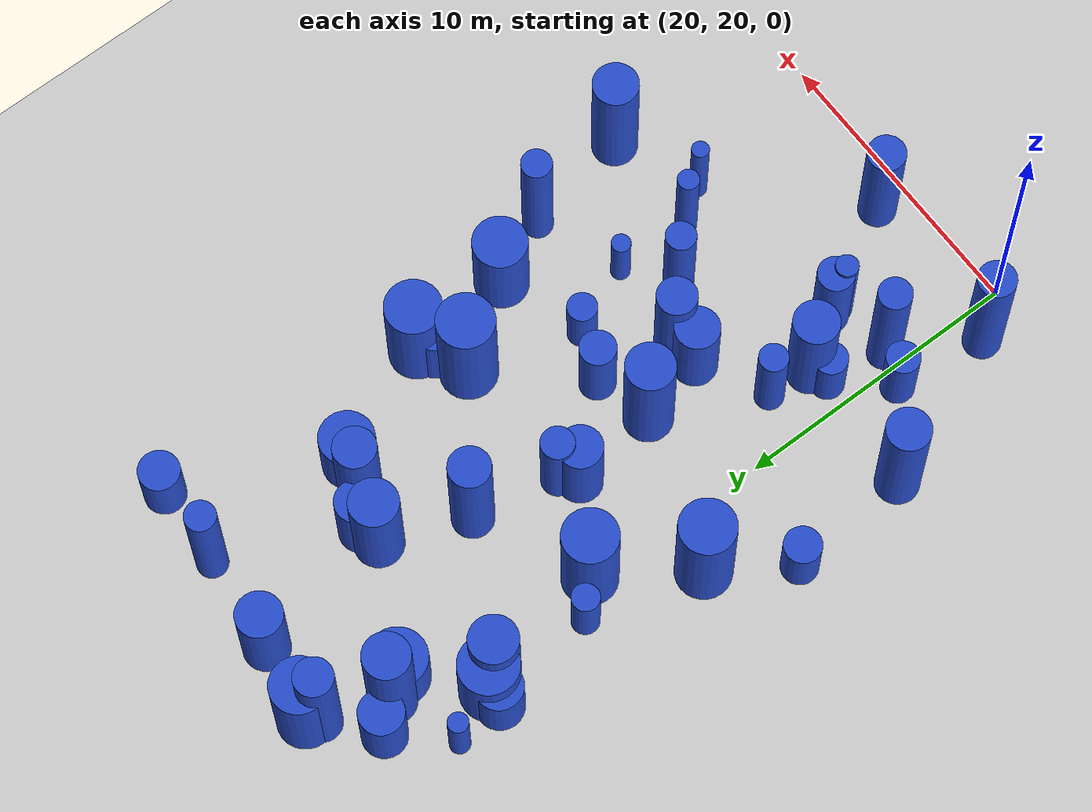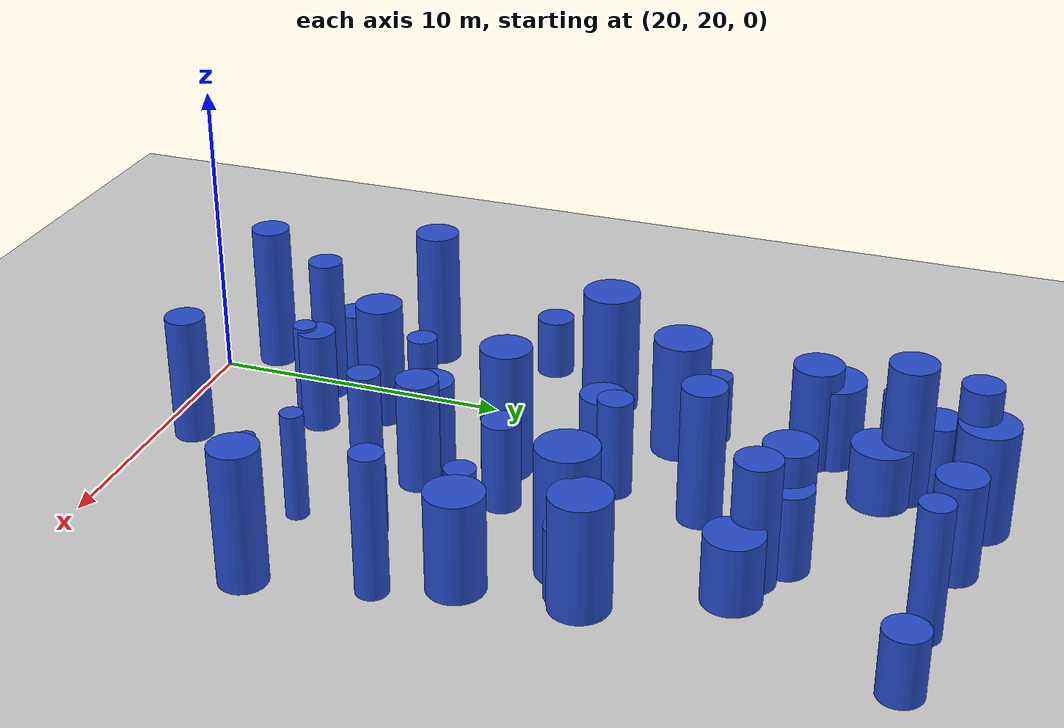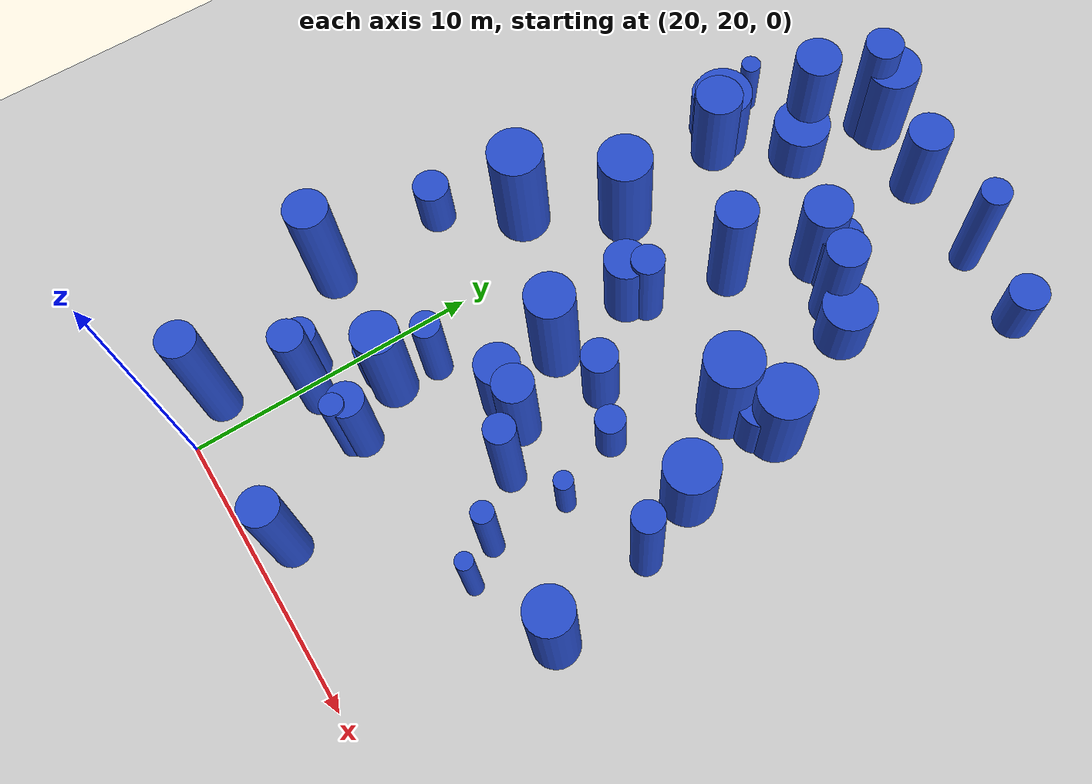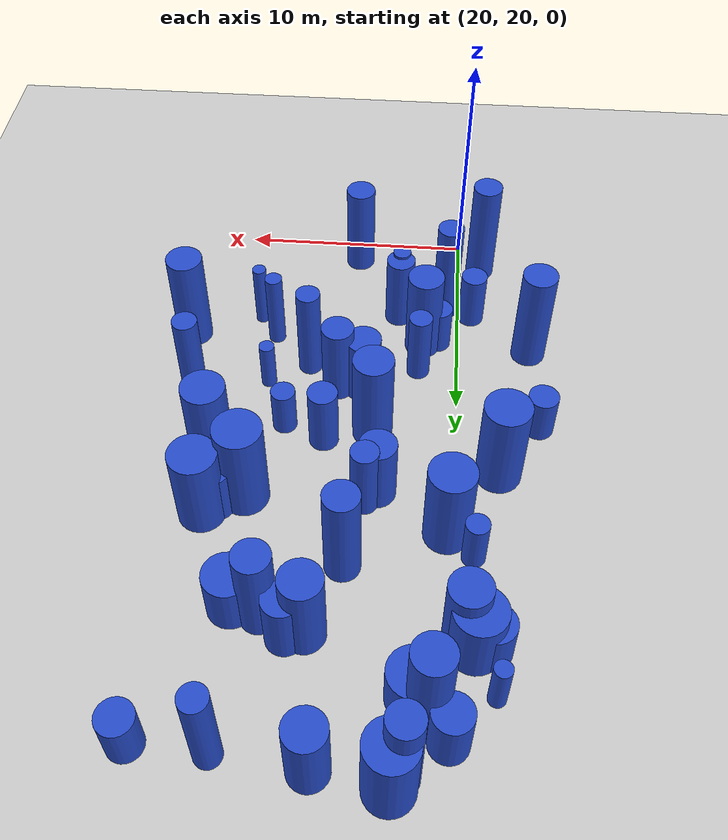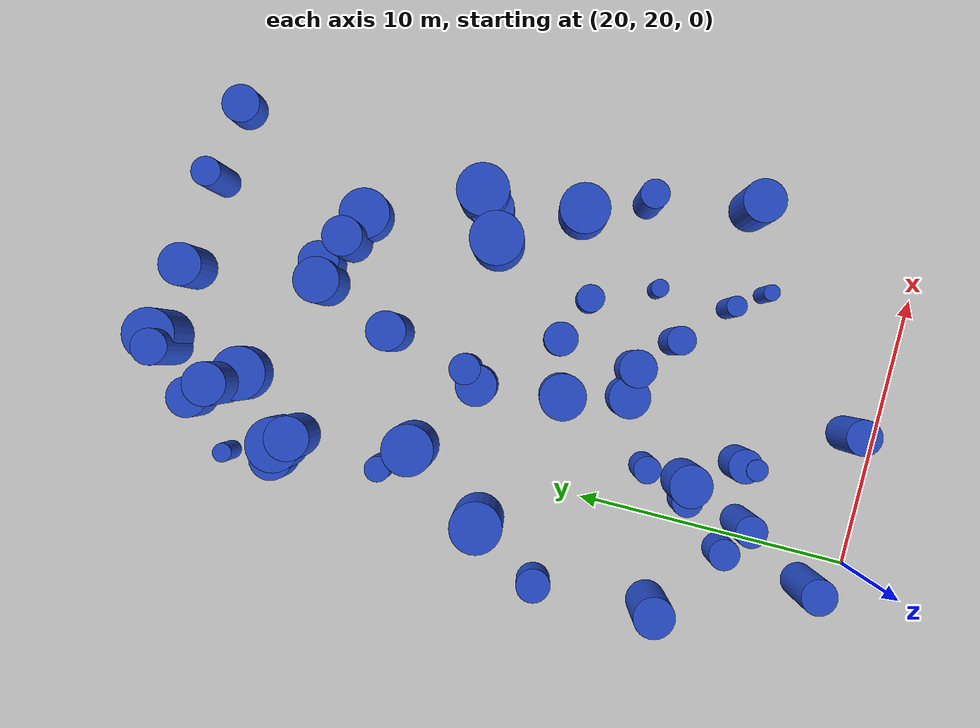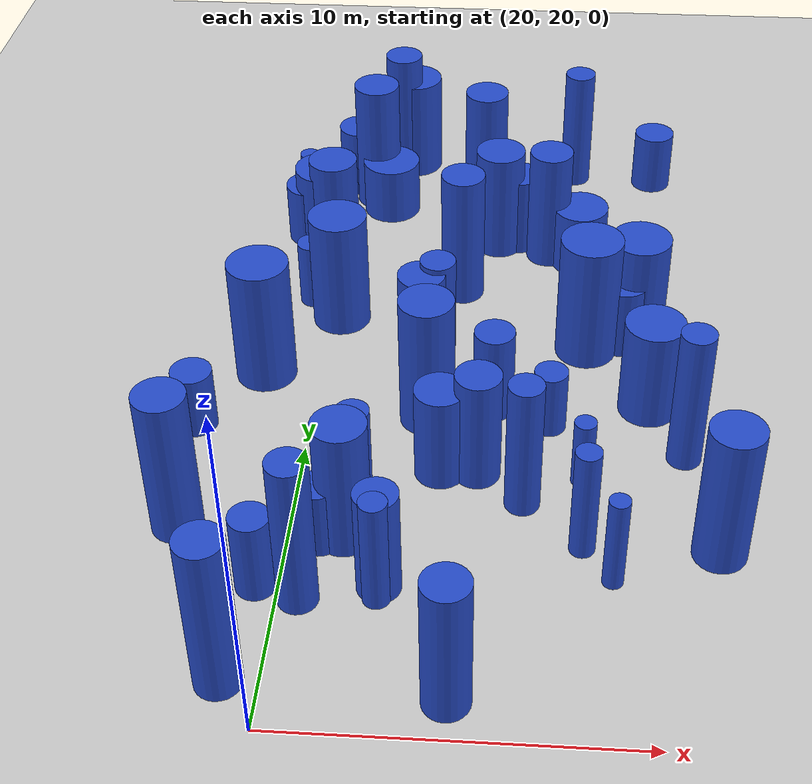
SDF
<sdf version="1.6">
 <world name="default">
  <model name="ground_plane">
   <static>1</static>
   <link name="link">
    <collision name="collision">
     <geometry><plane><normal>0 0 1</normal><size>100 100</size></plane></geometry>
     <surface><friction><ode><mu>100</mu><mu2>50</mu2></ode></friction></surface>
    </collision>
    <visual name="visual">
     <cast_shadows>0</cast_shadows>
     <geometry><plane><normal>0 0 1</normal><size>100 100</size></plane></geometry>
     <material>
      <script><uri>file://media/materials/scripts/gazebo.material</uri><name>Gazebo/Grey</name></script>
     </material>
    </visual>
   </link>
  </model>
  <model name="9">
   <static>0</static>
   <link name="link">
    <inertial>
     <mass>2</mass>
     <inertia><ixx>2.17214</ixx><ixy>0</ixy><ixz>0</ixz><iyy>2.17214</iyy><iyz>0</iyz><izz>0.825516</izz></inertia>
    </inertial>
    <collision name="collision">
     <geometry><cylinder><length>3.24904</length><radius>0.908579</radius></cylinder></geometry>
     <surface><contact><collide_without_contact>1</collide_without_contact></contact></surface>
    </collision>
    <visual name="visual">
     <geometry><cylinder><length>3.24904</length><radius>0.908579</radius></cylinder></geometry>
     <material>
      <script><uri>file://media/materials/scripts/gazebo.material</uri><name>Gazebo/Blue</name></script>
     </material>
    </visual>
    <gravity>0</gravity>
   </link>
   <pose>30.0928 32.4885 1.62452 0 -0 0</pose>
  </model>
  <model name="16">
   <static>0</static>
   <link name="link">
    <inertial>
     <mass>2</mass>
     <inertia><ixx>3.98692</ixx><ixy>0</ixy><ixz>0</ixz><iyy>3.98692</iyy><iyz>0</iyz><izz>0.541429</izz></inertia>
    </inertial>
    <collision name="collision">
     <geometry><cylinder><length>4.72199</length><radius>0.735818</radius></cylinder></geometry>
     <surface><contact><collide_without_contact>1</collide_without_contact></contact></surface>
    </collision>
    <visual name="visual">
     <geometry><cylinder><length>4.72199</length><radius>0.735818</radius></cylinder></geometry>
     <material>
      <script><uri>file://media/materials/scripts/gazebo.material</uri><name>Gazebo/Blue</name></script>
     </material>
    </visual>
    <gravity>0</gravity>
   </link>
   <pose>16.8892 26.7119 2.361 0 -0 0</pose>
  </model>
  <model name="21">
   <static>0</static>
   <link name="link">
    <inertial>
     <mass>2</mass>
     <inertia><ixx>3.15803</ixx><ixy>0</ixy><ixz>0</ixz><iyy>3.15803</iyy><iyz>0</iyz><izz>0.583815</izz></inertia>
    </inertial>
    <collision name="collision">
     <geometry><cylinder><length>4.14689</length><radius>0.764078</radius></cylinder></geometry>
     <surface><contact><collide_without_contact>1</collide_without_contact></contact></surface>
    </collision>
    <visual name="visual">
     <geometry><cylinder><length>4.14689</length><radius>0.764078</radius></cylinder></geometry>
     <material>
      <script><uri>file://media/materials/scripts/gazebo.material</uri><name>Gazebo/Blue</name></script>
     </material>
    </visual>
    <gravity>0</gravity>
   </link>
   <pose>21.5547 26.5343 2.07345 0 -0 0</pose>
  </model>
  <model name="22">
   <static>0</static>
   <link name="link">
    <inertial>
     <mass>2</mass>
     <inertia><ixx>3.25357</ixx><ixy>0</ixy><ixz>0</ixz><iyy>3.25357</iyy><iyz>0</iyz><izz>0.409144</izz></inertia>
    </inertial>
    <collision name="collision">
     <geometry><cylinder><length>4.27715</length><radius>0.639643</radius></cylinder></geometry>
     <surface><contact><collide_without_contact>1</collide_without_contact></contact></surface>
    </collision>
    <visual name="visual">
     <geometry><cylinder><length>4.27715</length><radius>0.639643</radius></cylinder></geometry>
     <material>
      <script><uri>file://media/materials/scripts/gazebo.material</uri><name>Gazebo/Blue</name></script>
     </material>
    </visual>
    <gravity>0</gravity>
   </link>
   <pose>24.6833 21.1514 2.13857 0 -0 0</pose>
  </model>
  <model name="32">
   <static>0</static>
   <link name="link">
    <inertial>
     <mass>2</mass>
     <inertia><ixx>3.68543</ixx><ixy>0</ixy><ixz>0</ixz><iyy>3.68543</iyy><iyz>0</iyz><izz>0.263178</izz></inertia>
    </inertial>
    <collision name="collision">
     <geometry><cylinder><length>4.61769</length><radius>0.513009</radius></cylinder></geometry>
     <surface><contact><collide_without_contact>1</collide_without_contact></contact></surface>
    </collision>
    <visual name="visual">
     <geometry><cylinder><length>4.61769</length><radius>0.513009</radius></cylinder></geometry>
     <material>
      <script><uri>file://media/materials/scripts/gazebo.material</uri><name>Gazebo/Blue</name></script>
     </material>
    </visual>
    <gravity>0</gravity>
   </link>
   <pose>31.0444 30.2874 2.30884 0 -0 0</pose>
  </model>
  <model name="34">
   <static>0</static>
   <link name="link">
    <inertial>
     <mass>2</mass>
     <inertia><ixx>0.87381</ixx><ixy>0</ixy><ixz>0</ixz><iyy>0.87381</iyy><iyz>0</iyz><izz>0.104626</izz></inertia>
    </inertial>
    <collision name="collision">
     <geometry><cylinder><length>2.22013</length><radius>0.323459</radius></cylinder></geometry>
     <surface><contact><collide_without_contact>1</collide_without_contact></contact></surface>
    </collision>
    <visual name="visual">
     <geometry><cylinder><length>2.22013</length><radius>0.323459</radius></cylinder></geometry>
     <material>
      <script><uri>file://media/materials/scripts/gazebo.material</uri><name>Gazebo/Blue</name></script>
     </material>
    </visual>
    <gravity>0</gravity>
   </link>
   <pose>28.0725 29.1738 1.11007 0 -0 0</pose>
  </model>
  <model name="36">
   <static>0</static>
   <link name="link">
    <inertial>
     <mass>2</mass>
     <inertia><ixx>1.95658</ixx><ixy>0</ixy><ixz>0</ixz><iyy>1.95658</iyy><iyz>0</iyz><izz>0.315427</izz></inertia>
    </inertial>
    <collision name="collision">
     <geometry><cylinder><length>3.2853</length><radius>0.561629</radius></cylinder></geometry>
     <surface><contact><collide_without_contact>1</collide_without_contact></contact></surface>
    </collision>
    <visual name="visual">
     <geometry><cylinder><length>3.2853</length><radius>0.561629</radius></cylinder></geometry>
     <material>
      <script><uri>file://media/materials/scripts/gazebo.material</uri><name>Gazebo/Blue</name></script>
     </material>
    </visual>
    <gravity>0</gravity>
   </link>
   <pose>23.5459 35.1984 1.64265 0 -0 0</pose>
  </model>
  <model name="41">
   <static>0</static>
   <link name="link">
    <inertial>
     <mass>2</mass>
     <inertia><ixx>1.76334</ixx><ixy>0</ixy><ixz>0</ixz><iyy>1.76334</iyy><iyz>0</iyz><izz>0.124496</izz></inertia>
    </inertial>
    <collision name="collision">
     <geometry><cylinder><length>3.19477</length><radius>0.352839</radius></cylinder></geometry>
     <surface><contact><collide_without_contact>1</collide_without_contact></contact></surface>
    </collision>
    <visual name="visual">
     <geometry><cylinder><length>3.19477</length><radius>0.352839</radius></cylinder></geometry>
     <material>
      <script><uri>file://media/materials/scripts/gazebo.material</uri><name>Gazebo/Blue</name></script>
     </material>
    </visual>
    <gravity>0</gravity>
   </link>
   <pose>23.6952 31.2859 1.59739 0 -0 0</pose>
  </model>
  <model name="47">
   <static>0</static>
   <link name="link">
    <inertial>
     <mass>2</mass>
     <inertia><ixx>3.56288</ixx><ixy>0</ixy><ixz>0</ixz><iyy>3.56288</iyy><iyz>0</iyz><izz>0.679619</izz></inertia>
    </inertial>
    <collision name="collision">
     <geometry><cylinder><length>4.39755</length><radius>0.82439</radius></cylinder></geometry>
     <surface><contact><collide_without_contact>1</collide_without_contact></contact></surface>
    </collision>
    <visual name="visual">
     <geometry><cylinder><length>4.39755</length><radius>0.82439</radius></cylinder></geometry>
     <material>
      <script><uri>file://media/materials/scripts/gazebo.material</uri><name>Gazebo/Blue</name></script>
     </material>
    </visual>
    <gravity>0</gravity>
   </link>
   <pose>23.4584 31.6278 2.19877 0 -0 0</pose>
  </model>
  <model name="49">
   <static>0</static>
   <link name="link">
    <inertial>
     <mass>2</mass>
     <inertia><ixx>1.29707</ixx><ixy>0</ixy><ixz>0</ixz><iyy>1.29707</iyy><iyz>0</iyz><izz>0.551894</izz></inertia>
    </inertial>
    <collision name="collision">
     <geometry><cylinder><length>2.47522</length><radius>0.742895</radius></cylinder></geometry>
     <surface><contact><collide_without_contact>1</collide_without_contact></contact></surface>
    </collision>
    <visual name="visual">
     <geometry><cylinder><length>2.47522</length><radius>0.742895</radius></cylinder></geometry>
     <material>
      <script><uri>file://media/materials/scripts/gazebo.material</uri><name>Gazebo/Blue</name></script>
     </material>
    </visual>
    <gravity>0</gravity>
   </link>
   <pose>20.0997 44.5938 1.23761 0 -0 0</pose>
  </model>
  <model name="53">
   <static>0</static>
   <link name="link">
    <inertial>
     <mass>2</mass>
     <inertia><ixx>2.77457</ixx><ixy>0</ixy><ixz>0</ixz><iyy>2.77457</iyy><iyz>0</iyz><izz>0.892205</izz></inertia>
    </inertial>
    <collision name="collision">
     <geometry><cylinder><length>3.73775</length><radius>0.944566</radius></cylinder></geometry>
     <surface><contact><collide_without_contact>1</collide_without_contact></contact></surface>
    </collision>
    <visual name="visual">
     <geometry><cylinder><length>3.73775</length><radius>0.944566</radius></cylinder></geometry>
     <material>
      <script><uri>file://media/materials/scripts/gazebo.material</uri><name>Gazebo/Blue</name></script>
     </material>
    </visual>
    <gravity>0</gravity>
   </link>
   <pose>29.7969 36.1188 1.86888 0 -0 0</pose>
  </model>
  <model name="58">
   <static>0</static>
   <link name="link">
    <inertial>
     <mass>2</mass>
     <inertia><ixx>4.36397</ixx><ixy>0</ixy><ixz>0</ixz><iyy>4.36397</iyy><iyz>0</iyz><izz>0.40593</izz></inertia>
    </inertial>
    <collision name="collision">
     <geometry><cylinder><length>4.9966</length><radius>0.637126</radius></cylinder></geometry>
     <surface><contact><collide_without_contact>1</collide_without_contact></contact></surface>
    </collision>
    <visual name="visual">
     <geometry><cylinder><length>4.9966</length><radius>0.637126</radius></cylinder></geometry>
     <material>
      <script><uri>file://media/materials/scripts/gazebo.material</uri><name>Gazebo/Blue</name></script>
     </material>
    </visual>
    <gravity>0</gravity>
   </link>
   <pose>19.0079 21.4355 2.4983 0 -0 0</pose>
  </model>
  <model name="66">
   <static>0</static>
   <link name="link">
    <inertial>
     <mass>2</mass>
     <inertia>
      <ixx>0.890381</ixx>
      <ixy>0</ixy>
      <ixz>0</ixz>
      <iyy>0.890381</iyy>
      <iyz>0</iyz>
      <izz>0.38752</izz>
     </inertia>
    </inertial>
    <collision name="collision">
     <geometry><cylinder><length>2.04444</length><radius>0.622511</radius></cylinder></geometry>
     <surface><contact><collide_without_contact>1</collide_without_contact></contact></surface>
    </collision>
    <visual name="visual">
     <geometry><cylinder><length>2.04444</length><radius>0.622511</radius></cylinder></geometry>
     <material>
      <script><uri>file://media/materials/scripts/gazebo.material</uri><name>Gazebo/Blue</name></script>
     </material>
    </visual>
    <gravity>0</gravity>
   </link>
   <pose>16.5905 30.9335 1.02222 0 -0 0</pose>
  </model>
  <model name="70">
   <static>0</static>
   <link name="link">
    <inertial>
     <mass>2</mass>
     <inertia>
      <ixx>0.970635</ixx>
      <ixy>0</ixy>
      <ixz>0</ixz>
      <iyy>0.970635</iyy>
      <iyz>0</iyz>
      <izz>0.218548</izz>
     </inertia>
    </inertial>
    <collision name="collision">
     <geometry><cylinder><length>2.27336</length><radius>0.467491</radius></cylinder></geometry>
     <surface><contact><collide_without_contact>1</collide_without_contact></contact></surface>
    </collision>
    <visual name="visual">
     <geometry><cylinder><length>2.27336</length><radius>0.467491</radius></cylinder></geometry>
     <material>
      <script><uri>file://media/materials/scripts/gazebo.material</uri><name>Gazebo/Blue</name></script>
     </material>
    </visual>
    <gravity>0</gravity>
   </link>
   <pose>19.2823 37.3799 1.13668 0 -0 0</pose>
  </model>
  <model name="71">
   <static>0</static>
   <link name="link">
    <inertial>
     <mass>2</mass>
     <inertia><ixx>1.25615</ixx><ixy>0</ixy><ixz>0</ixz><iyy>1.25615</iyy><iyz>0</iyz><izz>0.836986</izz></inertia>
    </inertial>
    <collision name="collision">
     <geometry><cylinder><length>2.24185</length><radius>0.914869</radius></cylinder></geometry>
     <surface><contact><collide_without_contact>1</collide_without_contact></contact></surface>
    </collision>
    <visual name="visual">
     <geometry><cylinder><length>2.24185</length><radius>0.914869</radius></cylinder></geometry>
     <material>
      <script><uri>file://media/materials/scripts/gazebo.material</uri><name>Gazebo/Blue</name></script>
     </material>
    </visual>
    <gravity>0</gravity>
   </link>
   <pose>28.0409 40.0976 1.12093 0 -0 0</pose>
  </model>
  <model name="76">
   <static>0</static>
   <link name="link">
    <inertial>
     <mass>2</mass>
     <inertia><ixx>4.14211</ixx><ixy>0</ixy><ixz>0</ixz><iyy>4.14211</iyy><iyz>0</iyz><izz>0.313951</izz></inertia>
    </inertial>
    <collision name="collision">
     <geometry><cylinder><length>4.88987</length><radius>0.560314</radius></cylinder></geometry>
     <surface><contact><collide_without_contact>1</collide_without_contact></contact></surface>
    </collision>
    <visual name="visual">
     <geometry><cylinder><length>4.88987</length><radius>0.560314</radius></cylinder></geometry>
     <material>
      <script><uri>file://media/materials/scripts/gazebo.material</uri><name>Gazebo/Blue</name></script>
     </material>
    </visual>
    <gravity>0</gravity>
   </link>
   <pose>20.5966 24.224 2.44494 0 -0 0</pose>
  </model>
  <model name="77">
   <static>0</static>
   <link name="link">
    <inertial>
     <mass>2</mass>
     <inertia><ixx>1.8782</ixx><ixy>0</ixy><ixz>0</ixz><iyy>1.8782</iyy><iyz>0</iyz><izz>0.551457</izz></inertia>
    </inertial>
    <collision name="collision">
     <geometry><cylinder><length>3.10077</length><radius>0.742602</radius></cylinder></geometry>
     <surface><contact><collide_without_contact>1</collide_without_contact></contact></surface>
    </collision>
    <visual name="visual">
     <geometry><cylinder><length>3.10077</length><radius>0.742602</radius></cylinder></geometry>
     <material>
      <script><uri>file://media/materials/scripts/gazebo.material</uri><name>Gazebo/Blue</name></script>
     </material>
    </visual>
    <gravity>0</gravity>
   </link>
   <pose>23.0701 34.6715 1.55039 0 -0 0</pose>
  </model>
  <model name="79">
   <static>0</static>
   <link name="link">
    <inertial>
     <mass>2</mass>
     <inertia><ixx>1.8778</ixx><ixy>0</ixy><ixz>0</ixz><iyy>1.8778</iyy><iyz>0</iyz><izz>0.557212</izz></inertia>
    </inertial>
    <collision name="collision">
     <geometry><cylinder><length>3.09761</length><radius>0.746467</radius></cylinder></geometry>
     <surface><contact><collide_without_contact>1</collide_without_contact></contact></surface>
    </collision>
    <visual name="visual">
     <geometry><cylinder><length>3.09761</length><radius>0.746467</radius></cylinder></geometry>
     <material>
      <script><uri>file://media/materials/scripts/gazebo.material</uri><name>Gazebo/Blue</name></script>
     </material>
    </visual>
    <gravity>0</gravity>
   </link>
   <pose>24 29.3017 1.54881 0 -0 0</pose>
  </model>
  <model name="80">
   <static>0</static>
   <link name="link">
    <inertial>
     <mass>2</mass>
     <inertia><ixx>1.81109</ixx><ixy>0</ixy><ixz>0</ixz><iyy>1.81109</iyy><iyz>0</iyz><izz>0.995744</izz></inertia>
    </inertial>
    <collision name="collision">
     <geometry><cylinder><length>2.80701</length><radius>0.99787</radius></cylinder></geometry>
     <surface><contact><collide_without_contact>1</collide_without_contact></contact></surface>
    </collision>
    <visual name="visual">
     <geometry><cylinder><length>2.80701</length><radius>0.99787</radius></cylinder></geometry>
     <material>
      <script><uri>file://media/materials/scripts/gazebo.material</uri><name>Gazebo/Blue</name></script>
     </material>
    </visual>
    <gravity>0</gravity>
   </link>
   <pose>19.236 41.1477 1.40351 0 -0 0</pose>
  </model>
  <model name="81">
   <static>0</static>
   <link name="link">
    <inertial>
     <mass>2</mass>
     <inertia><ixx>2.14247</ixx><ixy>0</ixy><ixz>0</ixz><iyy>2.14247</iyy><iyz>0</iyz><izz>0.374912</izz></inertia>
    </inertial>
    <collision name="collision">
     <geometry><cylinder><length>3.42492</length><radius>0.6123</radius></cylinder></geometry>
     <surface><contact><collide_without_contact>1</collide_without_contact></contact></surface>
    </collision>
    <visual name="visual">
     <geometry><cylinder><length>3.42492</length><radius>0.6123</radius></cylinder></geometry>
     <material>
      <script><uri>file://media/materials/scripts/gazebo.material</uri><name>Gazebo/Blue</name></script>
     </material>
    </visual>
    <gravity>0</gravity>
   </link>
   <pose>22.6757 24.7792 1.71246 0 -0 0</pose>
  </model>
  <model name="85">
   <static>0</static>
   <link name="link">
    <inertial>
     <mass>2</mass>
     <inertia><ixx>2.46445</ixx><ixy>0</ixy><ixz>0</ixz><iyy>2.46445</iyy><iyz>0</iyz><izz>0.454652</izz></inertia>
    </inertial>
    <collision name="collision">
     <geometry><cylinder><length>3.66371</length><radius>0.674279</radius></cylinder></geometry>
     <surface><contact><collide_without_contact>1</collide_without_contact></contact></surface>
    </collision>
    <visual name="visual">
     <geometry><cylinder><length>3.66371</length><radius>0.674279</radius></cylinder></geometry>
     <material>
      <script><uri>file://media/materials/scripts/gazebo.material</uri><name>Gazebo/Blue</name></script>
     </material>
    </visual>
    <gravity>0</gravity>
   </link>
   <pose>25.0625 29.2994 1.83185 0 -0 0</pose>
  </model>
  <model name="86">
   <static>0</static>
   <link name="link">
    <inertial>
     <mass>2</mass>
     <inertia>
      <ixx>0.922564</ixx>
      <ixy>0</ixy>
      <ixz>0</ixz>
      <iyy>0.922564</iyy>
      <iyz>0</iyz>
      <izz>0.325367</izz>
     </inertia>
    </inertial>
    <collision name="collision">
     <geometry><cylinder><length>2.13525</length><radius>0.57041</radius></cylinder></geometry>
     <surface><contact><collide_without_contact>1</collide_without_contact></contact></surface>
    </collision>
    <visual name="visual">
     <geometry><cylinder><length>2.13525</length><radius>0.57041</radius></cylinder></geometry>
     <material>
      <script><uri>file://media/materials/scripts/gazebo.material</uri><name>Gazebo/Blue</name></script>
     </material>
    </visual>
    <gravity>0</gravity>
   </link>
   <pose>20.9038 26.3233 1.06762 0 -0 0</pose>
  </model>
  <model name="87">
   <static>0</static>
   <link name="link">
    <inertial>
     <mass>2</mass>
     <inertia>
      <ixx>0.915313</ixx>
      <ixy>0</ixy>
      <ixz>0</ixz>
      <iyy>0.915313</iyy>
      <iyz>0</iyz>
      <izz>0.116767</izz>
     </inertia>
    </inertial>
    <collision name="collision">
     <geometry><cylinder><length>2.26751</length><radius>0.341712</radius></cylinder></geometry>
     <surface><contact><collide_without_contact>1</collide_without_contact></contact></surface>
    </collision>
    <visual name="visual">
     <geometry><cylinder><length>2.26751</length><radius>0.341712</radius></cylinder></geometry>
     <material>
      <script><uri>file://media/materials/scripts/gazebo.material</uri><name>Gazebo/Blue</name></script>
     </material>
    </visual>
    <gravity>0</gravity>
   </link>
   <pose>18.4759 42.9039 1.13375 0 -0 0</pose>
  </model>
  <model name="88">
   <static>0</static>
   <link name="link">
    <inertial>
     <mass>2</mass>
     <inertia><ixx>1.25112</ixx><ixy>0</ixy><ixz>0</ixz><iyy>1.25112</iyy><iyz>0</iyz><izz>0.64833</izz></inertia>
    </inertial>
    <collision name="collision">
     <geometry><cylinder><length>2.35833</length><radius>0.805189</radius></cylinder></geometry>
     <surface><contact><collide_without_contact>1</collide_without_contact></contact></surface>
    </collision>
    <visual name="visual">
     <geometry><cylinder><length>2.35833</length><radius>0.805189</radius></cylinder></geometry>
     <material>
      <script><uri>file://media/materials/scripts/gazebo.material</uri><name>Gazebo/Blue</name></script>
     </material>
    </visual>
    <gravity>0</gravity>
   </link>
   <pose>29.3432 35.7119 1.17916 0 -0 0</pose>
  </model>
  <model name="93">
   <static>0</static>
   <link name="link">
    <inertial>
     <mass>2</mass>
     <inertia><ixx>2.18353</ixx><ixy>0</ixy><ixz>0</ixz><iyy>2.18353</iyy><iyz>0</iyz><izz>0.134024</izz></inertia>
    </inertial>
    <collision name="collision">
     <geometry><cylinder><length>3.56358</length><radius>0.366093</radius></cylinder></geometry>
     <surface><contact><collide_without_contact>1</collide_without_contact></contact></surface>
    </collision>
    <visual name="visual">
     <geometry><cylinder><length>3.56358</length><radius>0.366093</radius></cylinder></geometry>
     <material>
      <script><uri>file://media/materials/scripts/gazebo.material</uri><name>Gazebo/Blue</name></script>
     </material>
    </visual>
    <gravity>0</gravity>
   </link>
   <pose>28.0487 26.4916 1.78179 0 -0 0</pose>
  </model>
  <model name="101">
   <static>0</static>
   <link name="link">
    <inertial>
     <mass>2</mass>
     <inertia>
      <ixx>0.990845</ixx>
      <ixy>0</ixy>
      <ixz>0</ixz>
      <iyy>0.990845</iyy>
      <iyz>0</iyz>
      <izz>0.469471</izz>
     </inertia>
    </inertial>
    <collision name="collision">
     <geometry><cylinder><length>2.12994</length><radius>0.68518</radius></cylinder></geometry>
     <surface><contact><collide_without_contact>1</collide_without_contact></contact></surface>
    </collision>
    <visual name="visual">
     <geometry><cylinder><length>2.12994</length><radius>0.68518</radius></cylinder></geometry>
     <material>
      <script><uri>file://media/materials/scripts/gazebo.material</uri><name>Gazebo/Blue</name></script>
     </material>
    </visual>
    <gravity>0</gravity>
   </link>
   <pose>30.7646 45.382 1.06497 0 -0 0</pose>
  </model>
  <model name="113">
   <static>0</static>
   <link name="link">
    <inertial>
     <mass>2</mass>
     <inertia>
      <ixx>1.90509</ixx>
      <ixy>0</ixy>
      <ixz>0</ixz>
      <iyy>1.90509</iyy>
      <iyz>0</iyz>
      <izz>0.0679389</izz>
     </inertia>
    </inertial>
    <collision name="collision">
     <geometry><cylinder><length>3.35063</length><radius>0.260651</radius></cylinder></geometry>
     <surface><contact><collide_without_contact>1</collide_without_contact></contact></surface>
    </collision>
    <visual name="visual">
     <geometry><cylinder><length>3.35063</length><radius>0.260651</radius></cylinder></geometry>
     <material>
      <script><uri>file://media/materials/scripts/gazebo.material</uri><name>Gazebo/Blue</name></script>
     </material>
    </visual>
    <gravity>0</gravity>
   </link>
   <pose>21.9005 46.319 1.67532 0 -0 0</pose>
  </model>
  <model name="122">
   <static>0</static>
   <link name="link">
    <inertial>
     <mass>2</mass>
     <inertia><ixx>0.85917</ixx><ixy>0</ixy><ixz>0</ixz><iyy>0.85917</iyy><iyz>0</iyz><izz>0.253446</izz></inertia>
    </inertial>
    <collision name="collision">
     <geometry><cylinder><length>2.09635</length><radius>0.503434</radius></cylinder></geometry>
     <surface><contact><collide_without_contact>1</collide_without_contact></contact></surface>
    </collision>
    <visual name="visual">
     <geometry><cylinder><length>2.09635</length><radius>0.503434</radius></cylinder></geometry>
     <material>
      <script><uri>file://media/materials/scripts/gazebo.material</uri><name>Gazebo/Blue</name></script>
     </material>
    </visual>
    <gravity>0</gravity>
   </link>
   <pose>27.112 31.4835 1.04817 0 -0 0</pose>
  </model>
  <model name="126">
   <static>0</static>
   <link name="link">
    <inertial>
     <mass>2</mass>
     <inertia><ixx>3.84882</ixx><ixy>0</ixy><ixz>0</ixz><iyy>3.84882</iyy><iyz>0</iyz><izz>0.201271</izz></inertia>
    </inertial>
    <collision name="collision">
     <geometry><cylinder><length>4.74227</length><radius>0.448632</radius></cylinder></geometry>
     <surface><contact><collide_without_contact>1</collide_without_contact></contact></surface>
    </collision>
    <visual name="visual">
     <geometry><cylinder><length>4.74227</length><radius>0.448632</radius></cylinder></geometry>
     <material>
      <script><uri>file://media/materials/scripts/gazebo.material</uri><name>Gazebo/Blue</name></script>
     </material>
    </visual>
    <gravity>0</gravity>
   </link>
   <pose>18.9164 21.5327 2.37113 0 -0 0</pose>
  </model>
  <model name="128">
   <static>0</static>
   <link name="link">
    <inertial>
     <mass>2</mass>
     <inertia><ixx>3.73478</ixx><ixy>0</ixy><ixz>0</ixz><iyy>3.73478</iyy><iyz>0</iyz><izz>0.491925</izz></inertia>
    </inertial>
    <collision name="collision">
     <geometry><cylinder><length>4.57525</length><radius>0.701374</radius></cylinder></geometry>
     <surface><contact><collide_without_contact>1</collide_without_contact></contact></surface>
    </collision>
    <visual name="visual">
     <geometry><cylinder><length>4.57525</length><radius>0.701374</radius></cylinder></geometry>
     <material>
      <script><uri>file://media/materials/scripts/gazebo.material</uri><name>Gazebo/Blue</name></script>
     </material>
    </visual>
    <gravity>0</gravity>
   </link>
   <pose>24.164 38.1173 2.28762 0 -0 0</pose>
  </model>
  <model name="138">
   <static>0</static>
   <link name="link">
    <inertial>
     <mass>2</mass>
     <inertia><ixx>1.25555</ixx><ixy>0</ixy><ixz>0</ixz><iyy>1.25555</iyy><iyz>0</iyz><izz>0.317055</izz></inertia>
    </inertial>
    <collision name="collision">
     <geometry><cylinder><length>2.56557</length><radius>0.563077</radius></cylinder></geometry>
     <surface><contact><collide_without_contact>1</collide_without_contact></contact></surface>
    </collision>
    <visual name="visual">
     <geometry><cylinder><length>2.56557</length><radius>0.563077</radius></cylinder></geometry>
     <material>
      <script><uri>file://media/materials/scripts/gazebo.material</uri><name>Gazebo/Blue</name></script>
     </material>
    </visual>
    <gravity>0</gravity>
   </link>
   <pose>19.4157 24.6248 1.28278 0 -0 0</pose>
  </model>
  <model name="148">
   <static>0</static>
   <link name="link">
    <inertial>
     <mass>2</mass>
     <inertia><ixx>1.88797</ixx><ixy>0</ixy><ixz>0</ixz><iyy>1.88797</iyy><iyz>0</iyz><izz>0.238703</izz></inertia>
    </inertial>
    <collision name="collision">
     <geometry><cylinder><length>3.25756</length><radius>0.488572</radius></cylinder></geometry>
     <surface><contact><collide_without_contact>1</collide_without_contact></contact></surface>
    </collision>
    <visual name="visual">
     <geometry><cylinder><length>3.25756</length><radius>0.488572</radius></cylinder></geometry>
     <material>
      <script><uri>file://media/materials/scripts/gazebo.material</uri><name>Gazebo/Blue</name></script>
     </material>
    </visual>
    <gravity>0</gravity>
   </link>
   <pose>21.6938 28.0796 1.62878 0 -0 0</pose>
  </model>
  <model name="149">
   <static>0</static>
   <link name="link">
    <inertial>
     <mass>2</mass>
     <inertia><ixx>2.64866</ixx><ixy>0</ixy><ixz>0</ixz><iyy>2.64866</iyy><iyz>0</iyz><izz>0.882997</izz></inertia>
    </inertial>
    <collision name="collision">
     <geometry><cylinder><length>3.63909</length><radius>0.939679</radius></cylinder></geometry>
     <surface><contact><collide_without_contact>1</collide_without_contact></contact></surface>
    </collision>
    <visual name="visual">
     <geometry><cylinder><length>3.63909</length><radius>0.939679</radius></cylinder></geometry>
     <material>
      <script><uri>file://media/materials/scripts/gazebo.material</uri><name>Gazebo/Blue</name></script>
     </material>
    </visual>
    <gravity>0</gravity>
   </link>
   <pose>21.9892 46.2278 1.81955 0 -0 0</pose>
  </model>
  <model name="157">
   <static>0</static>
   <link name="link">
    <inertial>
     <mass>2</mass>
     <inertia><ixx>1.63725</ixx><ixy>0</ixy><ixz>0</ixz><iyy>1.63725</iyy><iyz>0</iyz><izz>0.375015</izz></inertia>
    </inertial>
    <collision name="collision">
     <geometry><cylinder><length>2.94932</length><radius>0.612385</radius></cylinder></geometry>
     <surface><contact><collide_without_contact>1</collide_without_contact></contact></surface>
    </collision>
    <visual name="visual">
     <geometry><cylinder><length>2.94932</length><radius>0.612385</radius></cylinder></geometry>
     <material>
      <script><uri>file://media/materials/scripts/gazebo.material</uri><name>Gazebo/Blue</name></script>
     </material>
    </visual>
    <gravity>0</gravity>
   </link>
   <pose>25.42 32.1685 1.47466 0 -0 0</pose>
  </model>
  <model name="174">
   <static>0</static>
   <link name="link">
    <inertial>
     <mass>2</mass>
     <inertia><ixx>3.38568</ixx><ixy>0</ixy><ixz>0</ixz><iyy>3.38568</iyy><iyz>0</iyz><izz>0.876601</izz></inertia>
    </inertial>
    <collision name="collision">
     <geometry><cylinder><length>4.20526</length><radius>0.93627</radius></cylinder></geometry>
     <surface><contact><collide_without_contact>1</collide_without_contact></contact></surface>
    </collision>
    <visual name="visual">
     <geometry><cylinder><length>4.20526</length><radius>0.93627</radius></cylinder></geometry>
     <material>
      <script><uri>file://media/materials/scripts/gazebo.material</uri><name>Gazebo/Blue</name></script>
     </material>
    </visual>
    <gravity>0</gravity>
   </link>
   <pose>18.3005 33.4376 2.10263 0 -0 0</pose>
  </model>
  <model name="175">
   <static>0</static>
   <link name="link">
    <inertial>
     <mass>2</mass>
     <inertia><ixx>2.14915</ixx><ixy>0</ixy><ixz>0</ixz><iyy>2.14915</iyy><iyz>0</iyz><izz>0.591369</izz></inertia>
    </inertial>
    <collision name="collision">
     <geometry><cylinder><length>3.33479</length><radius>0.769005</radius></cylinder></geometry>
     <surface><contact><collide_without_contact>1</collide_without_contact></contact></surface>
    </collision>
    <visual name="visual">
     <geometry><cylinder><length>3.33479</length><radius>0.769005</radius></cylinder></geometry>
     <material>
      <script><uri>file://media/materials/scripts/gazebo.material</uri><name>Gazebo/Blue</name></script>
     </material>
    </visual>
    <gravity>0</gravity>
   </link>
   <pose>24.633 45.8262 1.66739 0 -0 0</pose>
  </model>
  <model name="178">
   <static>0</static>
   <link name="link">
    <inertial>
     <mass>2</mass>
     <inertia><ixx>3.45321</ixx><ixy>0</ixy><ixz>0</ixz><iyy>3.45321</iyy><iyz>0</iyz><izz>0.929013</izz></inertia>
    </inertial>
    <collision name="collision">
     <geometry><cylinder><length>4.23465</length><radius>0.963853</radius></cylinder></geometry>
     <surface><contact><collide_without_contact>1</collide_without_contact></contact></surface>
    </collision>
    <visual name="visual">
     <geometry><cylinder><length>4.23465</length><radius>0.963853</radius></cylinder></geometry>
     <material>
      <script><uri>file://media/materials/scripts/gazebo.material</uri><name>Gazebo/Blue</name></script>
     </material>
    </visual>
    <gravity>0</gravity>
   </link>
   <pose>28.2389 35.2166 2.11732 0 -0 0</pose>
  </model>
  <model name="181">
   <static>0</static>
   <link name="link">
    <inertial>
     <mass>2</mass>
     <inertia><ixx>3.07901</ixx><ixy>0</ixy><ixz>0</ixz><iyy>3.07901</iyy><iyz>0</iyz><izz>0.85425</izz></inertia>
    </inertial>
    <collision name="collision">
     <geometry><cylinder><length>3.9889</length><radius>0.924257</radius></cylinder></geometry>
     <surface><contact><collide_without_contact>1</collide_without_contact></contact></surface>
    </collision>
    <visual name="visual">
     <geometry><cylinder><length>3.9889</length><radius>0.924257</radius></cylinder></geometry>
     <material>
      <script><uri>file://media/materials/scripts/gazebo.material</uri><name>Gazebo/Blue</name></script>
     </material>
    </visual>
    <gravity>0</gravity>
   </link>
   <pose>20.3105 36.4134 1.99445 0 -0 0</pose>
  </model>
  <model name="185">
   <static>0</static>
   <link name="link">
    <inertial>
     <mass>2</mass>
     <inertia><ixx>3.2904</ixx><ixy>0</ixy><ixz>0</ixz><iyy>3.2904</iyy><iyz>0</iyz><izz>0.257624</izz></inertia>
    </inertial>
    <collision name="collision">
     <geometry><cylinder><length>4.3554</length><radius>0.507566</radius></cylinder></geometry>
     <surface><contact><collide_without_contact>1</collide_without_contact></contact></surface>
    </collision>
    <visual name="visual">
     <geometry><cylinder><length>4.3554</length><radius>0.507566</radius></cylinder></geometry>
     <material>
      <script><uri>file://media/materials/scripts/gazebo.material</uri><name>Gazebo/Blue</name></script>
     </material>
    </visual>
    <gravity>0</gravity>
   </link>
   <pose>26.3808 28.1299 2.1777 0 -0 0</pose>
  </model>
  <model name="189">
   <static>0</static>
   <link name="link">
    <inertial>
     <mass>2</mass>
     <inertia><ixx>3.66883</ixx><ixy>0</ixy><ixz>0</ixz><iyy>3.66883</iyy><iyz>0</iyz><izz>0.588744</izz></inertia>
    </inertial>
    <collision name="collision">
     <geometry><cylinder><length>4.49964</length><radius>0.767297</radius></cylinder></geometry>
     <surface><contact><collide_without_contact>1</collide_without_contact></contact></surface>
    </collision>
    <visual name="visual">
     <geometry><cylinder><length>4.49964</length><radius>0.767297</radius></cylinder></geometry>
     <material>
      <script><uri>file://media/materials/scripts/gazebo.material</uri><name>Gazebo/Blue</name></script>
     </material>
    </visual>
    <gravity>0</gravity>
   </link>
   <pose>31.7734 26.5476 2.24982 0 -0 0</pose>
  </model>
  <model name="202">
   <static>0</static>
   <link name="link">
    <inertial>
     <mass>2</mass>
     <inertia><ixx>3.10348</ixx><ixy>0</ixy><ixz>0</ixz><iyy>3.10348</iyy><iyz>0</iyz><izz>0.510542</izz></inertia>
    </inertial>
    <collision name="collision">
     <geometry><cylinder><length>4.13391</length><radius>0.714522</radius></cylinder></geometry>
     <surface><contact><collide_without_contact>1</collide_without_contact></contact></surface>
    </collision>
    <visual name="visual">
     <geometry><cylinder><length>4.13391</length><radius>0.714522</radius></cylinder></geometry>
     <material>
      <script><uri>file://media/materials/scripts/gazebo.material</uri><name>Gazebo/Blue</name></script>
     </material>
    </visual>
    <gravity>0</gravity>
   </link>
   <pose>26.9826 40.4433 2.06696 0 -0 0</pose>
  </model>
  <model name="203">
   <static>0</static>
   <link name="link">
    <inertial>
     <mass>2</mass>
     <inertia><ixx>2.72551</ixx><ixy>0</ixy><ixz>0</ixz><iyy>2.72551</iyy><iyz>0</iyz><izz>0.670454</izz></inertia>
    </inertial>
    <collision name="collision">
     <geometry><cylinder><length>3.78705</length><radius>0.818813</radius></cylinder></geometry>
     <surface><contact><collide_without_contact>1</collide_without_contact></contact></surface>
    </collision>
    <visual name="visual">
     <geometry><cylinder><length>3.78705</length><radius>0.818813</radius></cylinder></geometry>
     <material>
      <script><uri>file://media/materials/scripts/gazebo.material</uri><name>Gazebo/Blue</name></script>
     </material>
    </visual>
    <gravity>0</gravity>
   </link>
   <pose>25.2855 40.9859 1.89352 0 -0 0</pose>
  </model>
  <model name="205">
   <static>0</static>
   <link name="link">
    <inertial>
     <mass>2</mass>
     <inertia><ixx>1.55831</ixx><ixy>0</ixy><ixz>0</ixz><iyy>1.55831</iyy><iyz>0</iyz><izz>0.533917</izz></inertia>
    </inertial>
    <collision name="collision">
     <geometry><cylinder><length>2.78354</length><radius>0.730696</radius></cylinder></geometry>
     <surface><contact><collide_without_contact>1</collide_without_contact></contact></surface>
    </collision>
    <visual name="visual">
     <geometry><cylinder><length>2.78354</length><radius>0.730696</radius></cylinder></geometry>
     <material>
      <script><uri>file://media/materials/scripts/gazebo.material</uri><name>Gazebo/Blue</name></script>
     </material>
    </visual>
    <gravity>0</gravity>
   </link>
   <pose>25.9609 41.1948 1.39177 0 -0 0</pose>
  </model>
  <model name="207">
   <static>0</static>
   <link name="link">
    <inertial>
     <mass>2</mass>
     <inertia><ixx>3.8894</ixx><ixy>0</ixy><ixz>0</ixz><iyy>3.8894</iyy><iyz>0</iyz><izz>0.600913</izz></inertia>
    </inertial>
    <collision name="collision">
     <geometry><cylinder><length>4.64044</length><radius>0.775186</radius></cylinder></geometry>
     <surface><contact><collide_without_contact>1</collide_without_contact></contact></surface>
    </collision>
    <visual name="visual">
     <geometry><cylinder><length>4.64044</length><radius>0.775186</radius></cylinder></geometry>
     <material>
      <script><uri>file://media/materials/scripts/gazebo.material</uri><name>Gazebo/Blue</name></script>
     </material>
    </visual>
    <gravity>0</gravity>
   </link>
   <pose>20.8363 43.7305 2.32022 0 -0 0</pose>
  </model>
  <model name="226">
   <static>0</static>
   <link name="link">
    <inertial>
     <mass>2</mass>
     <inertia>
      <ixx>1.53462</ixx>
      <ixy>0</ixy>
      <ixz>0</ixz>
      <iyy>1.53462</iyy>
      <iyz>0</iyz>
      <izz>0.0871782</izz>
     </inertia>
    </inertial>
    <collision name="collision">
     <geometry><cylinder><length>2.99101</length><radius>0.29526</radius></cylinder></geometry>
     <surface><contact><collide_without_contact>1</collide_without_contact></contact></surface>
    </collision>
    <visual name="visual">
     <geometry><cylinder><length>2.99101</length><radius>0.29526</radius></cylinder></geometry>
     <material>
      <script><uri>file://media/materials/scripts/gazebo.material</uri><name>Gazebo/Blue</name></script>
     </material>
    </visual>
    <gravity>0</gravity>
   </link>
   <pose>28.8541 25.3477 1.49551 0 -0 0</pose>
  </model>
  <model name="228">
   <static>0</static>
   <link name="link">
    <inertial>
     <mass>2</mass>
     <inertia><ixx>3.89679</ixx><ixy>0</ixy><ixz>0</ixz><iyy>3.89679</iyy><iyz>0</iyz><izz>0.417637</izz></inertia>
    </inertial>
    <collision name="collision">
     <geometry><cylinder><length>4.70402</length><radius>0.646248</radius></cylinder></geometry>
     <surface><contact><collide_without_contact>1</collide_without_contact></contact></surface>
    </collision>
    <visual name="visual">
     <geometry><cylinder><length>4.70402</length><radius>0.646248</radius></cylinder></geometry>
     <material>
      <script><uri>file://media/materials/scripts/gazebo.material</uri><name>Gazebo/Blue</name></script>
     </material>
    </visual>
    <gravity>0</gravity>
   </link>
   <pose>21.617 45.8694 2.35201 0 -0 0</pose>
  </model>
  <model name="229">
   <static>0</static>
   <link name="link">
    <inertial>
     <mass>2</mass>
     <inertia><ixx>1.1566</ixx><ixy>0</ixy><ixz>0</ixz><iyy>1.1566</iyy><iyz>0</iyz><izz>0.973857</izz></inertia>
    </inertial>
    <collision name="collision">
     <geometry><cylinder><length>2.0045</length><radius>0.986842</radius></cylinder></geometry>
     <surface><contact><collide_without_contact>1</collide_without_contact></contact></surface>
    </collision>
    <visual name="visual">
     <geometry><cylinder><length>2.0045</length><radius>0.986842</radius></cylinder></geometry>
     <material>
      <script><uri>file://media/materials/scripts/gazebo.material</uri><name>Gazebo/Blue</name></script>
     </material>
    </visual>
    <gravity>0</gravity>
   </link>
   <pose>21.3527 43.0901 1.00225 0 -0 0</pose>
  </model>
  <model name="230">
   <static>0</static>
   <link name="link">
    <inertial>
     <mass>2</mass>
     <inertia><ixx>2.15786</ixx><ixy>0</ixy><ixz>0</ixz><iyy>2.15786</iyy><iyz>0</iyz><izz>0.14933</izz></inertia>
    </inertial>
    <collision name="collision">
     <geometry><cylinder><length>3.53542</length><radius>0.386433</radius></cylinder></geometry>
     <surface><contact><collide_without_contact>1</collide_without_contact></contact></surface>
    </collision>
    <visual name="visual">
     <geometry><cylinder><length>3.53542</length><radius>0.386433</radius></cylinder></geometry>
     <material>
      <script><uri>file://media/materials/scripts/gazebo.material</uri><name>Gazebo/Blue</name></script>
     </material>
    </visual>
    <gravity>0</gravity>
   </link>
   <pose>22.6501 24.3655 1.76771 0 -0 0</pose>
  </model>
  <model name="233">
   <static>0</static>
   <link name="link">
    <inertial>
     <mass>2</mass>
     <inertia><ixx>1.04622</ixx><ixy>0</ixy><ixz>0</ixz><iyy>1.04622</iyy><iyz>0</iyz><izz>0.62655</izz></inertia>
    </inertial>
    <collision name="collision">
     <geometry><cylinder><length>2.09707</length><radius>0.791549</radius></cylinder></geometry>
     <surface><contact><collide_without_contact>1</collide_without_contact></contact></surface>
    </collision>
    <visual name="visual">
     <geometry><cylinder><length>2.09707</length><radius>0.791549</radius></cylinder></geometry>
     <material>
      <script><uri>file://media/materials/scripts/gazebo.material</uri><name>Gazebo/Blue</name></script>
     </material>
    </visual>
    <gravity>0</gravity>
   </link>
   <pose>18.6839 41.1884 1.04853 0 -0 0</pose>
  </model>
  <model name="234">
   <static>0</static>
   <link name="link">
    <inertial>
     <mass>2</mass>
     <inertia><ixx>3.28474</ixx><ixy>0</ixy><ixz>0</ixz><iyy>3.28474</iyy><iyz>0</iyz><izz>0.269996</izz></inertia>
    </inertial>
    <collision name="collision">
     <geometry><cylinder><length>4.34723</length><radius>0.519611</radius></cylinder></geometry>
     <surface><contact><collide_without_contact>1</collide_without_contact></contact></surface>
    </collision>
    <visual name="visual">
     <geometry><cylinder><length>4.34723</length><radius>0.519611</radius></cylinder></geometry>
     <material>
      <script><uri>file://media/materials/scripts/gazebo.material</uri><name>Gazebo/Blue</name></script>
     </material>
    </visual>
    <gravity>0</gravity>
   </link>
   <pose>27.9701 45.538 2.17362 0 -0 0</pose>
  </model>
  <model name="242">
   <static>0</static>
   <link name="link">
    <inertial>
     <mass>2</mass>
     <inertia><ixx>2.29349</ixx><ixy>0</ixy><ixz>0</ixz><iyy>2.29349</iyy><iyz>0</iyz><izz>0.657443</izz></inertia>
    </inertial>
    <collision name="collision">
     <geometry><cylinder><length>3.43346</length><radius>0.810829</radius></cylinder></geometry>
     <surface><contact><collide_without_contact>1</collide_without_contact></contact></surface>
    </collision>
    <visual name="visual">
     <geometry><cylinder><length>3.43346</length><radius>0.810829</radius></cylinder></geometry>
     <material>
      <script><uri>file://media/materials/scripts/gazebo.material</uri><name>Gazebo/Blue</name></script>
     </material>
    </visual>
    <gravity>0</gravity>
   </link>
   <pose>19.6193 40.6578 1.71673 0 -0 0</pose>
  </model>
 </world>
</sdf>
